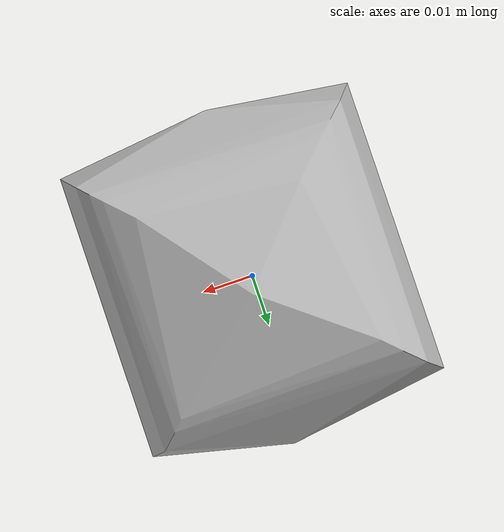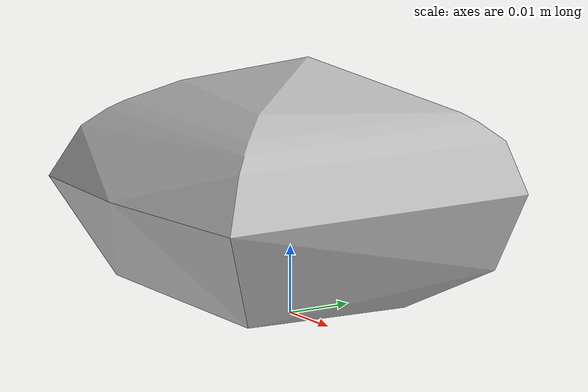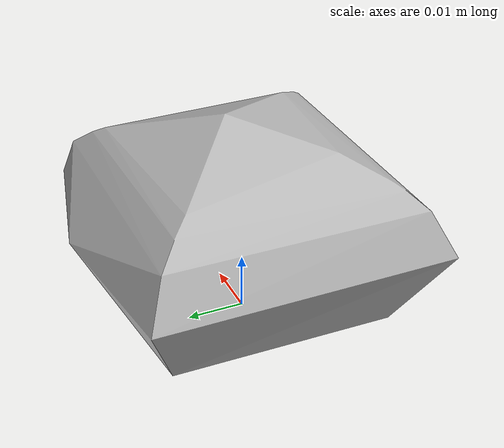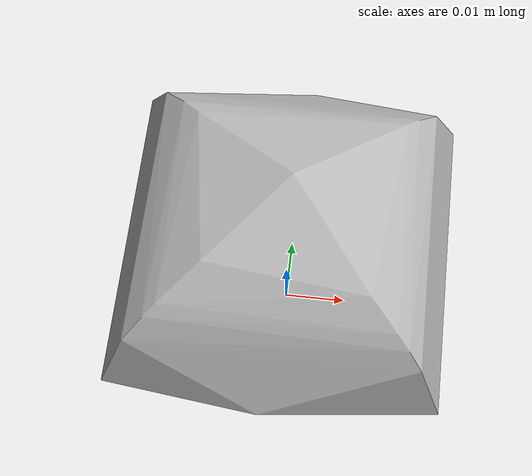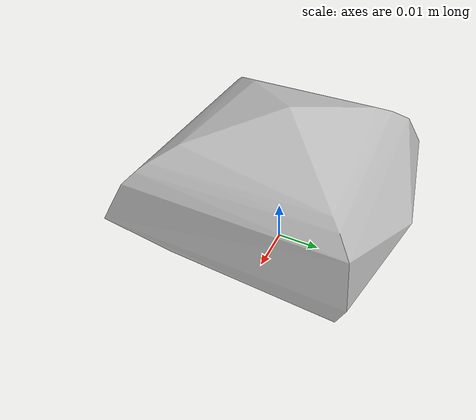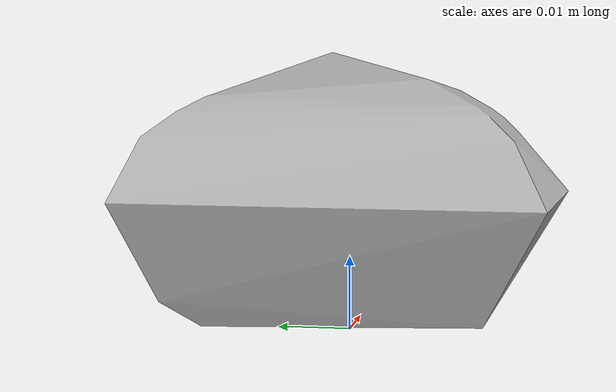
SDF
<?xml version="1.0"?>
<sdf version="1.6">
  <model name="rmf_owl">
    <link name="body">
      <pose>0 0 0 0 0 0</pose>
      <inertial>
        <!-- The total mass is 1.5 kg due to the rotor mass. -->
        <mass>1.48</mass>
        <inertia>
          <ixx>0.017</ixx>
          <ixy>0</ixy>
          <ixz>0</ixz>
          <iyy>0.018</iyy>
          <iyz>0</iyz>
          <izz>0.028</izz>
        </inertia>
      </inertial>
      <collision name="body_collision">
        <pose>0 0 0.0165 0 0 0</pose>
        <geometry>
          <mesh>
            <uri>meshes/rmf_owl_collision.dae</uri>
            <scale> 0.15 0.15 0.15</scale>
          </mesh>
        </geometry>
      </collision>
      <visual name="body_visual">
        <geometry>
          <mesh>
            <uri>meshes/rmf_owl.dae</uri>
            <scale> 0.2 0.2 0.2</scale>
          </mesh>
        </geometry>
      </visual>

      <sensor name="px4_imu" type="imu">
          <pose> 0 0 0 0 0 0 </pose>
          <always_on>true</always_on>
          <topic>imu</topic>
          <update_rate>200</update_rate>
      </sensor>

      <sensor name="imu_sensor" type="imu">
          <pose>0.0201 0.00356 -0.00598 -1.5707963 0 -1.5707963</pose>
          <always_on>true</always_on>
          <topic>okvis_imu</topic>
          <update_rate>200</update_rate>
          <imu>
              <angular_velocity>
                  <x>
                      <noise type="gaussian">
                          <mean>0</mean>
                          <stddev>0.00</stddev>
                          <bias_mean>0.00</bias_mean>
                          <bias_stddev>0.00</bias_stddev>
                          <dynamic_bias_stddev>0.00</dynamic_bias_stddev>
                          <dynamic_bias_correlation_time>400.0</dynamic_bias_correlation_time>
                          <precision>0.00</precision>
                      </noise>
                  </x>
                  <y>
                      <noise type="gaussian">
                          <mean>0</mean>
                          <stddev>0.00</stddev>
                          <bias_mean>0.00</bias_mean>
                          <bias_stddev>0.00</bias_stddev>
                          <dynamic_bias_stddev>0.00</dynamic_bias_stddev>
                          <dynamic_bias_correlation_time>400.0</dynamic_bias_correlation_time>
                          <precision>0.00</precision>
                      </noise>
                  </y>
                  <z>
                      <noise type="gaussian">
                          <mean>0</mean>
                          <stddev>0.00</stddev>
                          <bias_mean>0.00</bias_mean>
                          <bias_stddev>0.00</bias_stddev>
                          <dynamic_bias_stddev>0.00</dynamic_bias_stddev>
                          <dynamic_bias_correlation_time>400.0</dynamic_bias_correlation_time>
                          <precision>0.00</precision>
                      </noise>
                  </z>
              </angular_velocity>
              <linear_acceleration>
                  <x>
                      <noise type="gaussian">
                          <mean>0.0</mean>
                          <stddev>0.00</stddev>
                          <bias_mean>0.0</bias_mean>
                          <bias_stddev>0.00</bias_stddev>
                          <dynamic_bias_stddev>0.00</dynamic_bias_stddev>
                          <dynamic_bias_correlation_time>175.0</dynamic_bias_correlation_time>
                          <precision>0.00</precision>
                      </noise>
                  </x>
                  <y>
                      <noise type="gaussian">
                          <mean>0.0</mean>
                          <stddev>0.00</stddev>
                          <bias_mean>0.0</bias_mean>
                          <bias_stddev>0.00</bias_stddev>
                          <dynamic_bias_stddev>0.00</dynamic_bias_stddev>
                          <dynamic_bias_correlation_time>175.0</dynamic_bias_correlation_time>
                          <precision>0.00</precision>
                      </noise>
                  </y>
                  <z>
                      <noise type="gaussian">
                          <mean>0.0</mean>
                          <stddev>0.00</stddev>
                          <bias_mean>0.0</bias_mean>
                          <bias_stddev>0.00</bias_stddev>
                          <dynamic_bias_stddev>0.00</dynamic_bias_stddev>
                          <dynamic_bias_correlation_time>175.0</dynamic_bias_correlation_time>
                          <precision>0.00</precision>
                      </noise>
                  </z>
              </linear_acceleration>
          </imu>
      </sensor>

      <!--Depth of realsense-->
      <sensor name="camera_depth" type="depth_camera">
        <pose>0.0233 0.009604 -0.00746 0 0 0</pose>
        <update_rate>15</update_rate>
        <camera name="camera_depth">
            <horizontal_fov>1.37274</horizontal_fov>
            <lens> <!--
                calculation of horizontal_fov:
                h_fov = 2*tan-1(width/(2*fx))
                -->
                <intrinsics>
                    <fx>390.598938</fx>
                    <fy>390.598938</fy>
                    <cx>320.0</cx>
                    <cy>240.0</cy>
                    <s>0</s>
                </intrinsics>
            </lens>
            <image> <!--Acceptable image resolutions and frequency of the D455 can be found in page 71 here https://www.intelrealsense.com/wp-content/uploads/2022/03/Intel-RealSense-D400-Series-Datasheet-March-2022.pdf-->
                <width>640</width>
                <height>480</height>
                <format>R_FLOAT32</format>
            </image>
            <clip>
                <near>0.01</near>
                <far>20.0</far>
            </clip>
        </camera>
      </sensor>

      <!--RGB camera of realsense-->
      <sensor name="rgb_camera" type="camera">
          <pose>0.0233 0.009604 -0.00746 0 0 0</pose>
          <always_on>true</always_on>
          <update_rate>10</update_rate>
          <visualize>true</visualize>
          <camera name="rgb_camera">
              <!--
                  calculation of horizontal_fov:
                  h_fov = 2*tan-1(width/(2*fx))
              -->
              <horizontal_fov>1.37274</horizontal_fov>
              <lens>
                  <intrinsics>
                      <fx>390.598938</fx>
                      <fy>390.598938</fy>
                      <cx>320.581665</cx>
                      <cy>237.712845</cy>
                      <s>0</s>
                  </intrinsics>
              </lens>
              <image>
                  <width>640</width>
                  <height>480</height>
                  <format>R8G8B8</format>
              </image>
              <noise>
						    <type>gaussian</type>
						    <mean>0.0</mean>
						    <stddev>0.0</stddev>
					    </noise>
          </camera>
      </sensor>

       <!--Left camera of realsense-->
      <sensor name="camera_left" type="camera">
          <pose>0.0233 0.009604 -0.00746 0 0 0</pose>
          <always_on>true</always_on>
          <update_rate>10</update_rate>
          <visualize>true</visualize>
          <camera name="camera_left">
              <!--
                  calculation of horizontal_fov:
                  h_fov = 2*tan-1(width/(2*fx))
              -->
              <horizontal_fov>1.37274</horizontal_fov>
              <lens>
                  <intrinsics>
                      <fx>390.598938</fx>
                      <fy>390.598938</fy>
                      <cx>320.581665</cx>
                      <cy>237.712845</cy>
                      <s>0</s>
                  </intrinsics>
              </lens>
              <image>
                  <width>640</width>
                  <height>480</height>
                  <format>R8G8B8</format>
              </image>
              <noise>
						    <type>gaussian</type>
						    <mean>0.0</mean>
						    <stddev>0.0</stddev>
					    </noise>
          </camera>
      </sensor>

      <!--Right camera of realsense-->
      <sensor name="camera_right" type="camera">
          <pose>0.0233 -0.0894 -0.00746 0 0 0</pose>
          <always_on>true</always_on>
          <update_rate>10</update_rate>
          <visualize>true</visualize>
          <camera name="camera_right">
              <!--
                  calculation of horizontal_fov:
                  h_fov = 2*tan-1(width/(2*fx))
              -->
              <horizontal_fov>1.37274</horizontal_fov>
              <lens>
                  <intrinsics>
                      <fx>390.598938</fx>
                      <fy>390.598938</fy>
                      <cx>320.581665</cx>
                      <cy>237.712845</cy>
                      <s>0</s>
                  </intrinsics>
              </lens>
              <image>
                  <width>640</width>
                  <height>480</height>
                  <format>R8G8B8</format>
              </image>
          </camera>
      </sensor>

    </link>

    <link name="rotor_0">
      <pose frame="">0.09 -0.09 -0.005 0 0 0</pose>
      <inertial>
        <mass>0.005</mass>
        <inertia>
          <ixx>9.75e-07</ixx>
          <ixy>0</ixy>
          <ixz>0</ixz>
          <iyy>8.13545e-05</iyy>
          <iyz>0</iyz>
          <izz>8.22545e-05</izz>
        </inertia>
      </inertial>
      <gravity>1</gravity>
      <velocity_decay/>
    </link>
    <joint name="rotor_0_joint" type="revolute">
      <child>rotor_0</child>
      <parent>body</parent>
      <axis>
        <xyz>0 0 1</xyz>
        <limit>
          <lower>-1e+16</lower>
          <upper>1e+16</upper>
        </limit>
        <dynamics>
          <spring_reference>0</spring_reference>
          <spring_stiffness>0</spring_stiffness>
        </dynamics>
        <use_parent_model_frame>1</use_parent_model_frame>
      </axis>
    </joint>

    <link name="rotor_1">
      <pose frame="">-0.09 0.09 0.05 0 0 0</pose>
      <inertial>
        <mass>0.005</mass>
        <inertia>
          <ixx>9.75e-07</ixx>
          <ixy>0</ixy>
          <ixz>0</ixz>
          <iyy>8.13545e-05</iyy>
          <iyz>0</iyz>
          <izz>8.22545e-05</izz>
        </inertia>
      </inertial>
      <gravity>1</gravity>
      <velocity_decay/>
    </link>
    <joint name="rotor_1_joint" type="revolute">
      <child>rotor_1</child>
      <parent>body</parent>
      <axis>
        <xyz>0 0 1</xyz>
        <limit>
          <lower>-1e+16</lower>
          <upper>1e+16</upper>
        </limit>
        <dynamics>
          <spring_reference>0</spring_reference>
          <spring_stiffness>0</spring_stiffness>
        </dynamics>
        <use_parent_model_frame>1</use_parent_model_frame>
      </axis>
    </joint>

    <link name="rotor_2">
      <pose frame="">0.09 0.09 -0.005 0 0 0</pose>
      <inertial>
        <mass>0.005</mass>
        <inertia>
          <ixx>9.75e-07</ixx>
          <ixy>0</ixy>
          <ixz>0</ixz>
          <iyy>8.13545e-05</iyy>
          <iyz>0</iyz>
          <izz>8.22545e-05</izz>
        </inertia>
      </inertial>
      <gravity>1</gravity>
      <velocity_decay/>
    </link>
    <joint name="rotor_2_joint" type="revolute">
      <child>rotor_2</child>
      <parent>body</parent>
      <axis>
        <xyz>0 0 1</xyz>
        <limit>
          <lower>-1e+16</lower>
          <upper>1e+16</upper>
        </limit>
        <dynamics>
          <spring_reference>0</spring_reference>
          <spring_stiffness>0</spring_stiffness>
        </dynamics>
        <use_parent_model_frame>1</use_parent_model_frame>
      </axis>
    </joint>

    <link name="rotor_3">
      <pose frame="">-0.09 -0.09 0.05 0 0 0</pose>
      <inertial>
        <mass>0.005</mass>
        <inertia>
          <ixx>9.75e-07</ixx>
          <ixy>0</ixy>
          <ixz>0</ixz>
          <iyy>8.13545e-05</iyy>
          <iyz>0</iyz>
          <izz>8.22545e-05</izz>
        </inertia>
      </inertial>
      <gravity>1</gravity>
      <velocity_decay/>
    </link>
    <joint name="rotor_3_joint" type="revolute">
      <child>rotor_3</child>
      <parent>body</parent>
      <axis>
        <xyz>0 0 1</xyz>
        <limit>
          <lower>-1e+16</lower>
          <upper>1e+16</upper>
        </limit>
        <dynamics>
          <spring_reference>0</spring_reference>
          <spring_stiffness>0</spring_stiffness>
        </dynamics>
        <use_parent_model_frame>1</use_parent_model_frame>
      </axis>
    </joint>

    <plugin filename="libignition-gazebo-pose-publisher-system.so" name="ignition::gazebo::systems::PosePublisher">
      <publish_link_pose>true</publish_link_pose>
      <publish_sensor_pose>true</publish_sensor_pose>
      <publish_collision_pose>false</publish_collision_pose>
      <publish_visual_pose>false</publish_visual_pose>
      <publish_nested_model_pose>true</publish_nested_model_pose>
      <use_pose_vector_msg>true</use_pose_vector_msg>
      <static_publisher>false</static_publisher>
    </plugin>

    <plugin filename="libgazebo_barometer_plugin.so" name="barometer_plugin::BarometerPlugin">
      <link_name>body</link_name>
    </plugin>
    <plugin filename="libgazebo_gps_plugin.so" name="gps_plugin::GpsPlugin">
      <link_name>body</link_name>
    </plugin>
    <plugin filename="libgazebo_magnetometer_plugin.so" name="magnetometer_plugin::MagnetometerPlugin">
      <link_name>body</link_name>
    </plugin>

    <plugin filename="ignition-gazebo-multicopter-motor-model-system" name="ignition::gazebo::systems::MulticopterMotorModel">
      <robotNamespace>rmf_owl</robotNamespace>
      <jointName>rotor_0_joint</jointName>
      <linkName>rotor_0</linkName>
      <turningDirection>ccw</turningDirection>
      <timeConstantUp>0.0125</timeConstantUp>
      <timeConstantDown>0.025</timeConstantDown>
      <maxRotVelocity>800.0</maxRotVelocity>
      <motorConstant>8.54858e-06</motorConstant>
      <momentConstant>0.016</momentConstant>
      <commandSubTopic>gazebo/command/motor_speed</commandSubTopic>
      <motorNumber>0</motorNumber>
      <rotorDragCoefficient>8.06428e-05</rotorDragCoefficient>
      <rollingMomentCoefficient>1e-06</rollingMomentCoefficient>
      <motorSpeedPubTopic>motor_speed/0</motorSpeedPubTopic>
      <rotorVelocitySlowdownSim>10</rotorVelocitySlowdownSim>
      <motorType>velocity</motorType>
    </plugin>

    <plugin filename="ignition-gazebo-multicopter-motor-model-system" name="ignition::gazebo::systems::MulticopterMotorModel">
      <robotNamespace>rmf_owl</robotNamespace>
      <jointName>rotor_1_joint</jointName>
      <linkName>rotor_1</linkName>
      <turningDirection>ccw</turningDirection>
      <timeConstantUp>0.0125</timeConstantUp>
      <timeConstantDown>0.025</timeConstantDown>
      <maxRotVelocity>800.0</maxRotVelocity>
      <motorConstant>8.54858e-06</motorConstant>
      <momentConstant>0.016</momentConstant>
      <commandSubTopic>gazebo/command/motor_speed</commandSubTopic>
      <motorNumber>1</motorNumber>
      <rotorDragCoefficient>8.06428e-05</rotorDragCoefficient>
      <rollingMomentCoefficient>1e-06</rollingMomentCoefficient>
      <motorSpeedPubTopic>motor_speed/1</motorSpeedPubTopic>
      <rotorVelocitySlowdownSim>10</rotorVelocitySlowdownSim>
      <motorType>velocity</motorType>
    </plugin>

    <plugin filename="ignition-gazebo-multicopter-motor-model-system" name="ignition::gazebo::systems::MulticopterMotorModel">
      <robotNamespace>rmf_owl</robotNamespace>
      <jointName>rotor_2_joint</jointName>
      <linkName>rotor_2</linkName>
      <turningDirection>cw</turningDirection>
      <timeConstantUp>0.0125</timeConstantUp>
      <timeConstantDown>0.025</timeConstantDown>
      <maxRotVelocity>800.0</maxRotVelocity>
      <motorConstant>8.54858e-06</motorConstant>
      <momentConstant>0.016</momentConstant>
      <commandSubTopic>gazebo/command/motor_speed</commandSubTopic>
      <motorNumber>2</motorNumber>
      <rotorDragCoefficient>8.06428e-05</rotorDragCoefficient>
      <rollingMomentCoefficient>1e-06</rollingMomentCoefficient>
      <motorSpeedPubTopic>motor_speed/2</motorSpeedPubTopic>
      <rotorVelocitySlowdownSim>10</rotorVelocitySlowdownSim>
      <motorType>velocity</motorType>
    </plugin>

    <plugin filename="ignition-gazebo-multicopter-motor-model-system" name="ignition::gazebo::systems::MulticopterMotorModel">
      <robotNamespace>rmf_owl</robotNamespace>
      <jointName>rotor_3_joint</jointName>
      <linkName>rotor_3</linkName>
      <turningDirection>cw</turningDirection>
      <timeConstantUp>0.0125</timeConstantUp>
      <timeConstantDown>0.025</timeConstantDown>
      <maxRotVelocity>800.0</maxRotVelocity>
      <motorConstant>8.54858e-06</motorConstant>
      <momentConstant>0.016</momentConstant>
      <commandSubTopic>gazebo/command/motor_speed</commandSubTopic>
      <motorNumber>3</motorNumber>
      <rotorDragCoefficient>8.06428e-05</rotorDragCoefficient>
      <rollingMomentCoefficient>1e-06</rollingMomentCoefficient>
      <motorSpeedPubTopic>motor_speed/3</motorSpeedPubTopic>
      <rotorVelocitySlowdownSim>10</rotorVelocitySlowdownSim>
      <motorType>velocity</motorType>
    </plugin>

    <plugin filename="libmavlink_sitl_ign_gazebo.so" name="mavlink_interface::GazeboMavlinkInterface">
      <robotNamespace>rmf_owl</robotNamespace>
      <imuSubTopic>/imu</imuSubTopic>
      <magSubTopic>/mag</magSubTopic>
      <baroSubTopic>/baro</baroSubTopic>
      <mavlink_addr>INADDR_ANY</mavlink_addr>
      <mavlink_udp_port>14560</mavlink_udp_port>
      <mavlink_tcp_port>4560</mavlink_tcp_port>
      <serialEnabled>0</serialEnabled>
      <serialDevice>/dev/ttyACM0</serialDevice>
      <baudRate>921600</baudRate>
      <qgc_addr>INADDR_ANY</qgc_addr>
      <qgc_udp_port>14550</qgc_udp_port>
      <sdk_addr>INADDR_ANY</sdk_addr>
      <sdk_udp_port>14540</sdk_udp_port>
      <hil_mode>0</hil_mode>
      <hil_state_level>0</hil_state_level>
      <vehicle_is_tailsitter>0</vehicle_is_tailsitter>
      <send_vision_estimation>0</send_vision_estimation>
      <send_odometry>1</send_odometry>
      <enable_lockstep>1</enable_lockstep>
      <use_tcp>1</use_tcp>
      <motorSpeedCommandPubTopic>/gazebo/command/motor_speed</motorSpeedCommandPubTopic>
      <control_channels>
        <channel name="rotor1">
          <input_index>0</input_index>
          <input_offset>0</input_offset>
          <input_scaling>1000</input_scaling>
          <zero_position_disarmed>0</zero_position_disarmed>
          <zero_position_armed>100</zero_position_armed>
          <joint_control_type>velocity</joint_control_type>
        </channel>
        <channel name="rotor2">
          <input_index>1</input_index>
          <input_offset>0</input_offset>
          <input_scaling>1000</input_scaling>
          <zero_position_disarmed>0</zero_position_disarmed>
          <zero_position_armed>100</zero_position_armed>
          <joint_control_type>velocity</joint_control_type>
        </channel>
        <channel name="rotor3">
          <input_index>2</input_index>
          <input_offset>0</input_offset>
          <input_scaling>1000</input_scaling>
          <zero_position_disarmed>0</zero_position_disarmed>
          <zero_position_armed>100</zero_position_armed>
          <joint_control_type>velocity</joint_control_type>
        </channel>
        <channel name="rotor4">
          <input_index>3</input_index>
          <input_offset>0</input_offset>
          <input_scaling>1000</input_scaling>
          <zero_position_disarmed>0</zero_position_disarmed>
          <zero_position_armed>100</zero_position_armed>
          <joint_control_type>velocity</joint_control_type>
        </channel>
        <channel name="rotor5">
          <input_index>4</input_index>
          <input_offset>1</input_offset>
          <input_scaling>324.6</input_scaling>
          <zero_position_disarmed>0</zero_position_disarmed>
          <zero_position_armed>0</zero_position_armed>
          <joint_control_type>velocity</joint_control_type>
          <joint_control_pid>
            <p>0.1</p>
            <i>0</i>
            <d>0</d>
            <iMax>0.0</iMax>
            <iMin>0.0</iMin>
            <cmdMax>2</cmdMax>
            <cmdMin>-2</cmdMin>
          </joint_control_pid>
          <joint_name>zephyr_delta_wing::propeller_joint</joint_name>
        </channel>
        <channel name="rotor6">
          <input_index>5</input_index>
          <input_offset>0</input_offset>
          <input_scaling>0.524</input_scaling>
          <zero_position_disarmed>0</zero_position_disarmed>
          <zero_position_armed>0</zero_position_armed>
          <joint_control_type>position</joint_control_type>
          <joint_name>zephyr_delta_wing::flap_left_joint</joint_name>
          <joint_control_pid>
            <p>10.0</p>
            <i>0</i>
            <d>0</d>
            <iMax>0</iMax>
            <iMin>0</iMin>
            <cmdMax>20</cmdMax>
            <cmdMin>-20</cmdMin>
          </joint_control_pid>
        </channel>
        <channel name="rotor7">
          <input_index>6</input_index>
          <input_offset>0</input_offset>
          <input_scaling>0.524</input_scaling>
          <zero_position_disarmed>0</zero_position_disarmed>
          <zero_position_armed>0</zero_position_armed>
          <joint_control_type>position</joint_control_type>
          <joint_name>zephyr_delta_wing::flap_right_joint</joint_name>
          <joint_control_pid>
            <p>10.0</p>
            <i>0</i>
            <d>0</d>
            <iMax>0</iMax>
            <iMin>0</iMin>
            <cmdMax>20</cmdMax>
            <cmdMin>-20</cmdMin>
          </joint_control_pid>
        </channel>
        <channel name="rotor8">
          <input_index>7</input_index>
          <input_offset>0</input_offset>
          <input_scaling>0.524</input_scaling>
          <zero_position_disarmed>0</zero_position_disarmed>
          <zero_position_armed>0</zero_position_armed>
          <joint_control_type>position</joint_control_type>
        </channel>
      </control_channels>
    </plugin>
  </model>
</sdf>
